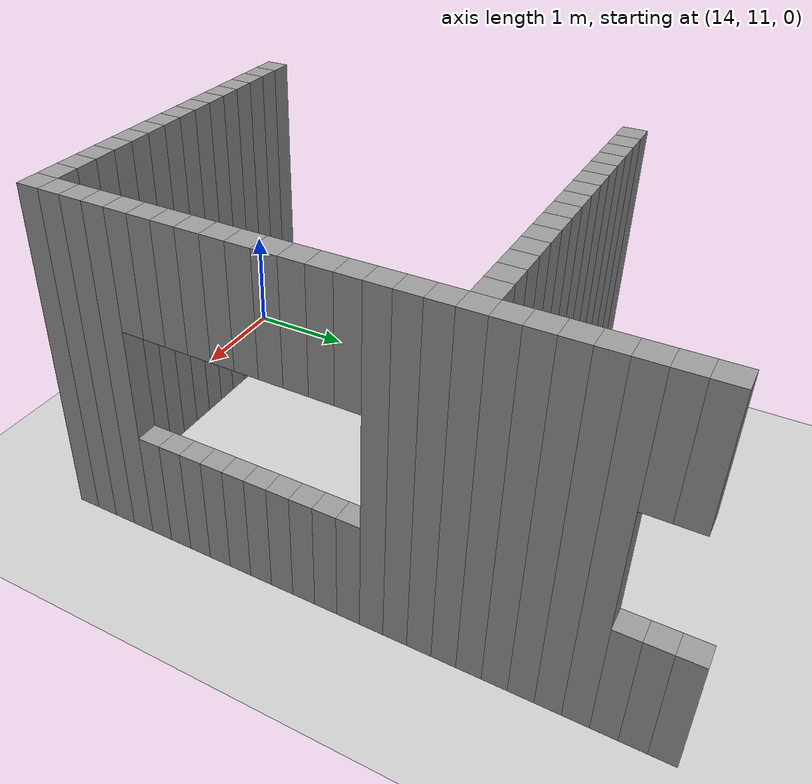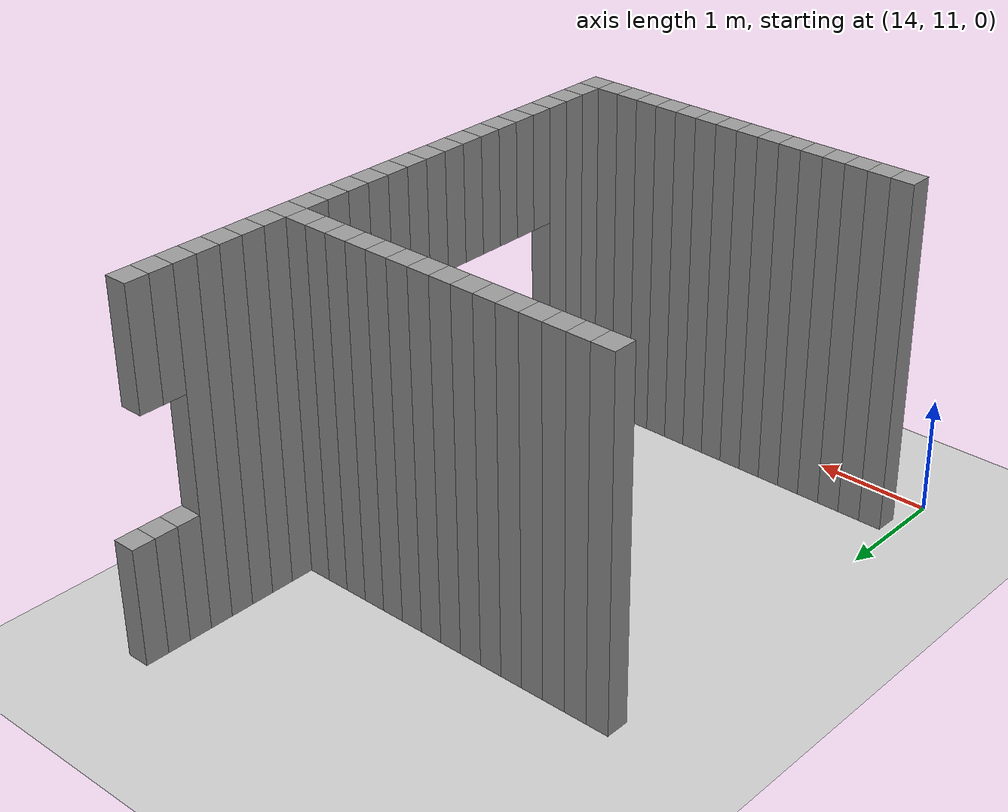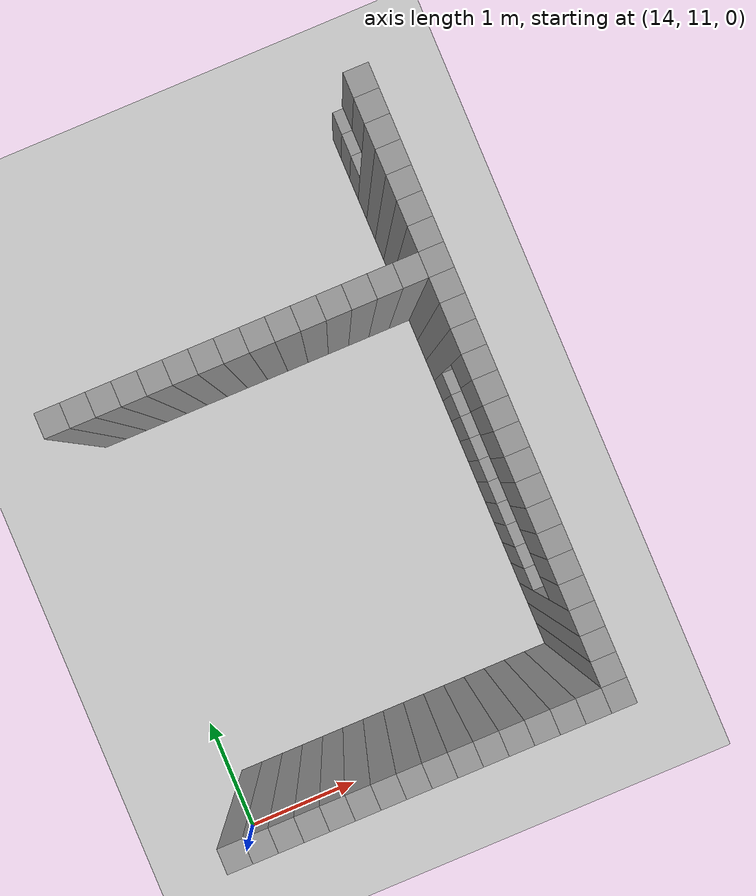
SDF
<sdf version="1.7">
 <world name="default">
  <model name="ground_plane">
   <static>1</static>
   <link name="link">
    <collision name="collision">
     <geometry><plane><normal>0 0 1</normal><size>100 100</size></plane></geometry>
     <surface>
      <contact><collide_bitmask>65535</collide_bitmask></contact>
      <friction><ode><mu>100</mu><mu2>50</mu2></ode></friction>
     </surface>
    </collision>
    <visual name="visual">
     <cast_shadows>0</cast_shadows>
     <geometry><plane><normal>0 0 1</normal><size>100 100</size></plane></geometry>
     <material>
      <script><uri>file://media/materials/scripts/gazebo.material</uri><name>Gazebo/Grey</name></script>
     </material>
    </visual>
   </link>
  </model>
  <model name="05222">
   <pose>-1 -1 0 0 -0 0</pose>
   <link name="Wall_564">
    <collision name="Wall_564_Collision">
     <geometry><box><size>0.2 0.2 3</size></box></geometry>
     <pose>0 0 1.5 0 -0 0</pose>
    </collision>
    <visual name="Wall_564_Visual">
     <pose>0 0 1.5 0 -0 0</pose>
     <geometry><box><size>0.2 0.2 3</size></box></geometry>
     <material>
      <script><uri>file://media/materials/scripts/gazebo.material</uri><name>Gazebo/Grey</name></script>
      <ambient>1 1 1 1</ambient>
     </material>
     <meta><layer>0</layer></meta>
    </visual>
    <pose>15.200000000000001 12.4 0 0 -0 0</pose>
   </link>
   <link name="Wall_565">
    <collision name="Wall_565_Collision">
     <geometry><box><size>0.2 0.2 3</size></box></geometry>
     <pose>0 0 1.5 0 -0 0</pose>
    </collision>
    <visual name="Wall_565_Visual">
     <pose>0 0 1.5 0 -0 0</pose>
     <geometry><box><size>0.2 0.2 3</size></box></geometry>
     <material>
      <script><uri>file://media/materials/scripts/gazebo.material</uri><name>Gazebo/Grey</name></script>
      <ambient>1 1 1 1</ambient>
     </material>
     <meta><layer>0</layer></meta>
    </visual>
    <pose>15.4 12.4 0 0 -0 0</pose>
   </link>
   <link name="Wall_566">
    <collision name="Wall_566_Collision">
     <geometry><box><size>0.2 0.2 3</size></box></geometry>
     <pose>0 0 1.5 0 -0 0</pose>
    </collision>
    <visual name="Wall_566_Visual">
     <pose>0 0 1.5 0 -0 0</pose>
     <geometry><box><size>0.2 0.2 3</size></box></geometry>
     <material>
      <script><uri>file://media/materials/scripts/gazebo.material</uri><name>Gazebo/Grey</name></script>
      <ambient>1 1 1 1</ambient>
     </material>
     <meta><layer>0</layer></meta>
    </visual>
    <pose>15.600000000000001 12.4 0 0 -0 0</pose>
   </link>
   <link name="Wall_567">
    <collision name="Wall_567_Collision">
     <geometry><box><size>0.2 0.2 3</size></box></geometry>
     <pose>0 0 1.5 0 -0 0</pose>
    </collision>
    <visual name="Wall_567_Visual">
     <pose>0 0 1.5 0 -0 0</pose>
     <geometry><box><size>0.2 0.2 3</size></box></geometry>
     <material>
      <script><uri>file://media/materials/scripts/gazebo.material</uri><name>Gazebo/Grey</name></script>
      <ambient>1 1 1 1</ambient>
     </material>
     <meta><layer>0</layer></meta>
    </visual>
    <pose>15.8 12.4 0 0 -0 0</pose>
   </link>
   <link name="Wall_568">
    <collision name="Wall_568_Collision">
     <geometry><box><size>0.2 0.2 3</size></box></geometry>
     <pose>0 0 1.5 0 -0 0</pose>
    </collision>
    <visual name="Wall_568_Visual">
     <pose>0 0 1.5 0 -0 0</pose>
     <geometry><box><size>0.2 0.2 3</size></box></geometry>
     <material>
      <script><uri>file://media/materials/scripts/gazebo.material</uri><name>Gazebo/Grey</name></script>
      <ambient>1 1 1 1</ambient>
     </material>
     <meta><layer>0</layer></meta>
    </visual>
    <pose>16.0 12.4 0 0 -0 0</pose>
   </link>
   <link name="Wall_569">
    <collision name="Wall_569_Collision">
     <geometry><box><size>0.2 0.2 3</size></box></geometry>
     <pose>0 0 1.5 0 -0 0</pose>
    </collision>
    <visual name="Wall_569_Visual">
     <pose>0 0 1.5 0 -0 0</pose>
     <geometry><box><size>0.2 0.2 3</size></box></geometry>
     <material>
      <script><uri>file://media/materials/scripts/gazebo.material</uri><name>Gazebo/Grey</name></script>
      <ambient>1 1 1 1</ambient>
     </material>
     <meta><layer>0</layer></meta>
    </visual>
    <pose>16.2 12.4 0 0 -0 0</pose>
   </link>
   <link name="Wall_570">
    <collision name="Wall_570_Collision">
     <geometry><box><size>0.2 0.2 3</size></box></geometry>
     <pose>0 0 1.5 0 -0 0</pose>
    </collision>
    <visual name="Wall_570_Visual">
     <pose>0 0 1.5 0 -0 0</pose>
     <geometry><box><size>0.2 0.2 3</size></box></geometry>
     <material>
      <script><uri>file://media/materials/scripts/gazebo.material</uri><name>Gazebo/Grey</name></script>
      <ambient>1 1 1 1</ambient>
     </material>
     <meta><layer>0</layer></meta>
    </visual>
    <pose>16.400000000000002 12.4 0 0 -0 0</pose>
   </link>
   <link name="Wall_571">
    <collision name="Wall_571_Collision">
     <geometry><box><size>0.2 0.2 3</size></box></geometry>
     <pose>0 0 1.5 0 -0 0</pose>
    </collision>
    <visual name="Wall_571_Visual">
     <pose>0 0 1.5 0 -0 0</pose>
     <geometry><box><size>0.2 0.2 3</size></box></geometry>
     <material>
      <script><uri>file://media/materials/scripts/gazebo.material</uri><name>Gazebo/Grey</name></script>
      <ambient>1 1 1 1</ambient>
     </material>
     <meta><layer>0</layer></meta>
    </visual>
    <pose>16.6 12.4 0 0 -0 0</pose>
   </link>
   <link name="Wall_572">
    <collision name="Wall_572_Collision">
     <geometry><box><size>0.2 0.2 3</size></box></geometry>
     <pose>0 0 1.5 0 -0 0</pose>
    </collision>
    <visual name="Wall_572_Visual">
     <pose>0 0 1.5 0 -0 0</pose>
     <geometry><box><size>0.2 0.2 3</size></box></geometry>
     <material>
      <script><uri>file://media/materials/scripts/gazebo.material</uri><name>Gazebo/Grey</name></script>
      <ambient>1 1 1 1</ambient>
     </material>
     <meta><layer>0</layer></meta>
    </visual>
    <pose>16.8 12.4 0 0 -0 0</pose>
   </link>
   <link name="Wall_573">
    <collision name="Wall_573_Collision">
     <geometry><box><size>0.2 0.2 3</size></box></geometry>
     <pose>0 0 1.5 0 -0 0</pose>
    </collision>
    <visual name="Wall_573_Visual">
     <pose>0 0 1.5 0 -0 0</pose>
     <geometry><box><size>0.2 0.2 3</size></box></geometry>
     <material>
      <script><uri>file://media/materials/scripts/gazebo.material</uri><name>Gazebo/Grey</name></script>
      <ambient>1 1 1 1</ambient>
     </material>
     <meta><layer>0</layer></meta>
    </visual>
    <pose>17.0 12.4 0 0 -0 0</pose>
   </link>
   <link name="Wall_574">
    <collision name="Wall_574_Collision">
     <geometry><box><size>0.2 0.2 3</size></box></geometry>
     <pose>0 0 1.5 0 -0 0</pose>
    </collision>
    <visual name="Wall_574_Visual">
     <pose>0 0 1.5 0 -0 0</pose>
     <geometry><box><size>0.2 0.2 3</size></box></geometry>
     <material>
      <script><uri>file://media/materials/scripts/gazebo.material</uri><name>Gazebo/Grey</name></script>
      <ambient>1 1 1 1</ambient>
     </material>
     <meta><layer>0</layer></meta>
    </visual>
    <pose>17.2 12.4 0 0 -0 0</pose>
   </link>
   <link name="Wall_575">
    <collision name="Wall_575_Collision">
     <geometry><box><size>0.2 0.2 3</size></box></geometry>
     <pose>0 0 1.5 0 -0 0</pose>
    </collision>
    <visual name="Wall_575_Visual">
     <pose>0 0 1.5 0 -0 0</pose>
     <geometry><box><size>0.2 0.2 3</size></box></geometry>
     <material>
      <script><uri>file://media/materials/scripts/gazebo.material</uri><name>Gazebo/Grey</name></script>
      <ambient>1 1 1 1</ambient>
     </material>
     <meta><layer>0</layer></meta>
    </visual>
    <pose>17.400000000000002 12.4 0 0 -0 0</pose>
   </link>
   <link name="Wall_576">
    <collision name="Wall_576_Collision">
     <geometry><box><size>0.2 0.2 3</size></box></geometry>
     <pose>0 0 1.5 0 -0 0</pose>
    </collision>
    <visual name="Wall_576_Visual">
     <pose>0 0 1.5 0 -0 0</pose>
     <geometry><box><size>0.2 0.2 3</size></box></geometry>
     <material>
      <script><uri>file://media/materials/scripts/gazebo.material</uri><name>Gazebo/Grey</name></script>
      <ambient>1 1 1 1</ambient>
     </material>
     <meta><layer>0</layer></meta>
    </visual>
    <pose>17.6 12.4 0 0 -0 0</pose>
   </link>
   <link name="Wall_577">
    <collision name="Wall_577_Collision">
     <geometry><box><size>0.2 0.2 3</size></box></geometry>
     <pose>0 0 1.5 0 -0 0</pose>
    </collision>
    <visual name="Wall_577_Visual">
     <pose>0 0 1.5 0 -0 0</pose>
     <geometry><box><size>0.2 0.2 3</size></box></geometry>
     <material>
      <script><uri>file://media/materials/scripts/gazebo.material</uri><name>Gazebo/Grey</name></script>
      <ambient>1 1 1 1</ambient>
     </material>
     <meta><layer>0</layer></meta>
    </visual>
    <pose>17.8 12.4 0 0 -0 0</pose>
   </link>
   <link name="Wall_578">
    <collision name="Wall_578_Collision">
     <geometry><box><size>0.2 0.2 3</size></box></geometry>
     <pose>0 0 1.5 0 -0 0</pose>
    </collision>
    <visual name="Wall_578_Visual">
     <pose>0 0 1.5 0 -0 0</pose>
     <geometry><box><size>0.2 0.2 3</size></box></geometry>
     <material>
      <script><uri>file://media/materials/scripts/gazebo.material</uri><name>Gazebo/Grey</name></script>
      <ambient>1 1 1 1</ambient>
     </material>
     <meta><layer>0</layer></meta>
    </visual>
    <pose>18.0 12.4 0 0 -0 0</pose>
   </link>
   <link name="Wall_579">
    <collision name="Wall_579_Collision">
     <geometry><box><size>0.2 0.2 3</size></box></geometry>
     <pose>0 0 1.5 0 -0 0</pose>
    </collision>
    <visual name="Wall_579_Visual">
     <pose>0 0 1.5 0 -0 0</pose>
     <geometry><box><size>0.2 0.2 3</size></box></geometry>
     <material>
      <script><uri>file://media/materials/scripts/gazebo.material</uri><name>Gazebo/Grey</name></script>
      <ambient>1 1 1 1</ambient>
     </material>
     <meta><layer>0</layer></meta>
    </visual>
    <pose>18.2 12.4 0 0 -0 0</pose>
   </link>
   <link name="Wall_584">
    <collision name="Wall_584_Collision">
     <geometry><box><size>0.2 0.2 3</size></box></geometry>
     <pose>0 0 1.5 0 -0 0</pose>
    </collision>
    <visual name="Wall_584_Visual">
     <pose>0 0 1.5 0 -0 0</pose>
     <geometry><box><size>0.2 0.2 3</size></box></geometry>
     <material>
      <script><uri>file://media/materials/scripts/gazebo.material</uri><name>Gazebo/Grey</name></script>
      <ambient>1 1 1 1</ambient>
     </material>
     <meta><layer>0</layer></meta>
    </visual>
    <pose>18.2 12.600000000000001 0 0 -0 0</pose>
   </link>
   <link name="Wall_590">
    <collision name="Wall_590_Collision">
     <geometry><box><size>0.2 0.2 3</size></box></geometry>
     <pose>0 0 1.5 0 -0 0</pose>
    </collision>
    <visual name="Wall_590_Visual">
     <pose>0 0 1.5 0 -0 0</pose>
     <geometry><box><size>0.2 0.2 3</size></box></geometry>
     <material>
      <script><uri>file://media/materials/scripts/gazebo.material</uri><name>Gazebo/Grey</name></script>
      <ambient>1 1 1 1</ambient>
     </material>
     <meta><layer>0</layer></meta>
    </visual>
    <pose>18.2 12.8 0 0 -0 0</pose>
   </link>
   <link name="Wall_633">
    <collision name="Wall_633_Collision">
     <geometry><box><size>0.2 0.2 3</size></box></geometry>
     <pose>0 0 1.5 0 -0 0</pose>
    </collision>
    <visual name="Wall_633_Visual">
     <pose>0 0 1.5 0 -0 0</pose>
     <geometry><box><size>0.2 0.2 3</size></box></geometry>
     <material>
      <script><uri>file://media/materials/scripts/gazebo.material</uri><name>Gazebo/Grey</name></script>
      <ambient>1 1 1 1</ambient>
     </material>
     <meta><layer>0</layer></meta>
    </visual>
    <pose>18.2 13.0 0 0 -0 0</pose>
   </link>
   <link name="Wall_657">
    <collision name="Wall_657_Collision">
     <geometry><box><size>0.2 0.2 1.0</size></box></geometry>
     <pose>0 0 0.5 0 -0 0</pose>
    </collision>
    <visual name="Wall_657_Visual">
     <pose>0 0 0.5 0 -0 0</pose>
     <geometry><box><size>0.2 0.2 1.0</size></box></geometry>
     <material>
      <script><uri>file://media/materials/scripts/gazebo.material</uri><name>Gazebo/Grey</name></script>
      <ambient>1 1 1 1</ambient>
     </material>
     <meta><layer>0</layer></meta>
    </visual>
    <pose>18.2 13.200000000000001 0 0 -0 0</pose>
   </link>
   <link name="Wall_658">
    <collision name="Wall_658_Collision">
     <geometry><box><size>0.2 0.2 1.0</size></box></geometry>
     <pose>0 0 2.5 0 -0 0</pose>
    </collision>
    <visual name="Wall_658_Visual">
     <pose>0 0 2.5 0 -0 0</pose>
     <geometry><box><size>0.2 0.2 1.0</size></box></geometry>
     <material>
      <script><uri>file://media/materials/scripts/gazebo.material</uri><name>Gazebo/Grey</name></script>
      <ambient>1 1 1 1</ambient>
     </material>
     <meta><layer>0</layer></meta>
    </visual>
    <pose>18.2 13.200000000000001 0 0 -0 0</pose>
   </link>
   <link name="Window_657">
    <collision name="Window_657_Collision">
     <geometry><box><size>0.2 0.2 1.0</size></box></geometry>
     <pose>0 0 1.5 0 -0 0</pose>
    </collision>
    <visual name="Wall_658_Visual">
     <pose>0 0 2.5 0 -0 0</pose>
     <geometry><box><size>0.2 0.2 1.0</size></box></geometry>
     <material>
      <script><uri>file://media/materials/scripts/gazebo.material</uri><name>Gazebo/Grey</name></script>
      <ambient>1 1 1 1</ambient>
     </material>
     <meta><layer>0</layer></meta>
    </visual>
    <pose>18.2 13.200000000000001 0 0 -0 0</pose>
   </link>
   <link name="Wall_665">
    <collision name="Wall_665_Collision">
     <geometry><box><size>0.2 0.2 1.0</size></box></geometry>
     <pose>0 0 0.5 0 -0 0</pose>
    </collision>
    <visual name="Wall_665_Visual">
     <pose>0 0 0.5 0 -0 0</pose>
     <geometry><box><size>0.2 0.2 1.0</size></box></geometry>
     <material>
      <script><uri>file://media/materials/scripts/gazebo.material</uri><name>Gazebo/Grey</name></script>
      <ambient>1 1 1 1</ambient>
     </material>
     <meta><layer>0</layer></meta>
    </visual>
    <pose>18.2 13.4 0 0 -0 0</pose>
   </link>
   <link name="Wall_666">
    <collision name="Wall_666_Collision">
     <geometry><box><size>0.2 0.2 1.0</size></box></geometry>
     <pose>0 0 2.5 0 -0 0</pose>
    </collision>
    <visual name="Wall_666_Visual">
     <pose>0 0 2.5 0 -0 0</pose>
     <geometry><box><size>0.2 0.2 1.0</size></box></geometry>
     <material>
      <script><uri>file://media/materials/scripts/gazebo.material</uri><name>Gazebo/Grey</name></script>
      <ambient>1 1 1 1</ambient>
     </material>
     <meta><layer>0</layer></meta>
    </visual>
    <pose>18.2 13.4 0 0 -0 0</pose>
   </link>
   <link name="Window_665">
    <collision name="Window_665_Collision">
     <geometry><box><size>0.2 0.2 1.0</size></box></geometry>
     <pose>0 0 1.5 0 -0 0</pose>
    </collision>
    <visual name="Wall_666_Visual">
     <pose>0 0 2.5 0 -0 0</pose>
     <geometry><box><size>0.2 0.2 1.0</size></box></geometry>
     <material>
      <script><uri>file://media/materials/scripts/gazebo.material</uri><name>Gazebo/Grey</name></script>
      <ambient>1 1 1 1</ambient>
     </material>
     <meta><layer>0</layer></meta>
    </visual>
    <pose>18.2 13.4 0 0 -0 0</pose>
   </link>
   <link name="Wall_673">
    <collision name="Wall_673_Collision">
     <geometry><box><size>0.2 0.2 1.0</size></box></geometry>
     <pose>0 0 0.5 0 -0 0</pose>
    </collision>
    <visual name="Wall_673_Visual">
     <pose>0 0 0.5 0 -0 0</pose>
     <geometry><box><size>0.2 0.2 1.0</size></box></geometry>
     <material>
      <script><uri>file://media/materials/scripts/gazebo.material</uri><name>Gazebo/Grey</name></script>
      <ambient>1 1 1 1</ambient>
     </material>
     <meta><layer>0</layer></meta>
    </visual>
    <pose>18.2 13.600000000000001 0 0 -0 0</pose>
   </link>
   <link name="Wall_674">
    <collision name="Wall_674_Collision">
     <geometry><box><size>0.2 0.2 1.0</size></box></geometry>
     <pose>0 0 2.5 0 -0 0</pose>
    </collision>
    <visual name="Wall_674_Visual">
     <pose>0 0 2.5 0 -0 0</pose>
     <geometry><box><size>0.2 0.2 1.0</size></box></geometry>
     <material>
      <script><uri>file://media/materials/scripts/gazebo.material</uri><name>Gazebo/Grey</name></script>
      <ambient>1 1 1 1</ambient>
     </material>
     <meta><layer>0</layer></meta>
    </visual>
    <pose>18.2 13.600000000000001 0 0 -0 0</pose>
   </link>
   <link name="Window_673">
    <collision name="Window_673_Collision">
     <geometry><box><size>0.2 0.2 1.0</size></box></geometry>
     <pose>0 0 1.5 0 -0 0</pose>
    </collision>
    <visual name="Wall_674_Visual">
     <pose>0 0 2.5 0 -0 0</pose>
     <geometry><box><size>0.2 0.2 1.0</size></box></geometry>
     <material>
      <script><uri>file://media/materials/scripts/gazebo.material</uri><name>Gazebo/Grey</name></script>
      <ambient>1 1 1 1</ambient>
     </material>
     <meta><layer>0</layer></meta>
    </visual>
    <pose>18.2 13.600000000000001 0 0 -0 0</pose>
   </link>
   <link name="Wall_680">
    <collision name="Wall_680_Collision">
     <geometry><box><size>0.2 0.2 1.0</size></box></geometry>
     <pose>0 0 0.5 0 -0 0</pose>
    </collision>
    <visual name="Wall_680_Visual">
     <pose>0 0 0.5 0 -0 0</pose>
     <geometry><box><size>0.2 0.2 1.0</size></box></geometry>
     <material>
      <script><uri>file://media/materials/scripts/gazebo.material</uri><name>Gazebo/Grey</name></script>
      <ambient>1 1 1 1</ambient>
     </material>
     <meta><layer>0</layer></meta>
    </visual>
    <pose>18.2 13.8 0 0 -0 0</pose>
   </link>
   <link name="Wall_681">
    <collision name="Wall_681_Collision">
     <geometry><box><size>0.2 0.2 1.0</size></box></geometry>
     <pose>0 0 2.5 0 -0 0</pose>
    </collision>
    <visual name="Wall_681_Visual">
     <pose>0 0 2.5 0 -0 0</pose>
     <geometry><box><size>0.2 0.2 1.0</size></box></geometry>
     <material>
      <script><uri>file://media/materials/scripts/gazebo.material</uri><name>Gazebo/Grey</name></script>
      <ambient>1 1 1 1</ambient>
     </material>
     <meta><layer>0</layer></meta>
    </visual>
    <pose>18.2 13.8 0 0 -0 0</pose>
   </link>
   <link name="Window_680">
    <collision name="Window_680_Collision">
     <geometry><box><size>0.2 0.2 1.0</size></box></geometry>
     <pose>0 0 1.5 0 -0 0</pose>
    </collision>
    <visual name="Wall_681_Visual">
     <pose>0 0 2.5 0 -0 0</pose>
     <geometry><box><size>0.2 0.2 1.0</size></box></geometry>
     <material>
      <script><uri>file://media/materials/scripts/gazebo.material</uri><name>Gazebo/Grey</name></script>
      <ambient>1 1 1 1</ambient>
     </material>
     <meta><layer>0</layer></meta>
    </visual>
    <pose>18.2 13.8 0 0 -0 0</pose>
   </link>
   <link name="Wall_687">
    <collision name="Wall_687_Collision">
     <geometry><box><size>0.2 0.2 1.0</size></box></geometry>
     <pose>0 0 0.5 0 -0 0</pose>
    </collision>
    <visual name="Wall_687_Visual">
     <pose>0 0 0.5 0 -0 0</pose>
     <geometry><box><size>0.2 0.2 1.0</size></box></geometry>
     <material>
      <script><uri>file://media/materials/scripts/gazebo.material</uri><name>Gazebo/Grey</name></script>
      <ambient>1 1 1 1</ambient>
     </material>
     <meta><layer>0</layer></meta>
    </visual>
    <pose>18.2 14.0 0 0 -0 0</pose>
   </link>
   <link name="Wall_688">
    <collision name="Wall_688_Collision">
     <geometry><box><size>0.2 0.2 1.0</size></box></geometry>
     <pose>0 0 2.5 0 -0 0</pose>
    </collision>
    <visual name="Wall_688_Visual">
     <pose>0 0 2.5 0 -0 0</pose>
     <geometry><box><size>0.2 0.2 1.0</size></box></geometry>
     <material>
      <script><uri>file://media/materials/scripts/gazebo.material</uri><name>Gazebo/Grey</name></script>
      <ambient>1 1 1 1</ambient>
     </material>
     <meta><layer>0</layer></meta>
    </visual>
    <pose>18.2 14.0 0 0 -0 0</pose>
   </link>
   <link name="Window_687">
    <collision name="Window_687_Collision">
     <geometry><box><size>0.2 0.2 1.0</size></box></geometry>
     <pose>0 0 1.5 0 -0 0</pose>
    </collision>
    <visual name="Wall_688_Visual">
     <pose>0 0 2.5 0 -0 0</pose>
     <geometry><box><size>0.2 0.2 1.0</size></box></geometry>
     <material>
      <script><uri>file://media/materials/scripts/gazebo.material</uri><name>Gazebo/Grey</name></script>
      <ambient>1 1 1 1</ambient>
     </material>
     <meta><layer>0</layer></meta>
    </visual>
    <pose>18.2 14.0 0 0 -0 0</pose>
   </link>
   <link name="Wall_693">
    <collision name="Wall_693_Collision">
     <geometry><box><size>0.2 0.2 1.0</size></box></geometry>
     <pose>0 0 0.5 0 -0 0</pose>
    </collision>
    <visual name="Wall_693_Visual">
     <pose>0 0 0.5 0 -0 0</pose>
     <geometry><box><size>0.2 0.2 1.0</size></box></geometry>
     <material>
      <script><uri>file://media/materials/scripts/gazebo.material</uri><name>Gazebo/Grey</name></script>
      <ambient>1 1 1 1</ambient>
     </material>
     <meta><layer>0</layer></meta>
    </visual>
    <pose>18.2 14.200000000000001 0 0 -0 0</pose>
   </link>
   <link name="Wall_694">
    <collision name="Wall_694_Collision">
     <geometry><box><size>0.2 0.2 1.0</size></box></geometry>
     <pose>0 0 2.5 0 -0 0</pose>
    </collision>
    <visual name="Wall_694_Visual">
     <pose>0 0 2.5 0 -0 0</pose>
     <geometry><box><size>0.2 0.2 1.0</size></box></geometry>
     <material>
      <script><uri>file://media/materials/scripts/gazebo.material</uri><name>Gazebo/Grey</name></script>
      <ambient>1 1 1 1</ambient>
     </material>
     <meta><layer>0</layer></meta>
    </visual>
    <pose>18.2 14.200000000000001 0 0 -0 0</pose>
   </link>
   <link name="Window_693">
    <collision name="Window_693_Collision">
     <geometry><box><size>0.2 0.2 1.0</size></box></geometry>
     <pose>0 0 1.5 0 -0 0</pose>
    </collision>
    <visual name="Wall_694_Visual">
     <pose>0 0 2.5 0 -0 0</pose>
     <geometry><box><size>0.2 0.2 1.0</size></box></geometry>
     <material>
      <script><uri>file://media/materials/scripts/gazebo.material</uri><name>Gazebo/Grey</name></script>
      <ambient>1 1 1 1</ambient>
     </material>
     <meta><layer>0</layer></meta>
    </visual>
    <pose>18.2 14.200000000000001 0 0 -0 0</pose>
   </link>
   <link name="Wall_699">
    <collision name="Wall_699_Collision">
     <geometry><box><size>0.2 0.2 1.0</size></box></geometry>
     <pose>0 0 0.5 0 -0 0</pose>
    </collision>
    <visual name="Wall_699_Visual">
     <pose>0 0 0.5 0 -0 0</pose>
     <geometry><box><size>0.2 0.2 1.0</size></box></geometry>
     <material>
      <script><uri>file://media/materials/scripts/gazebo.material</uri><name>Gazebo/Grey</name></script>
      <ambient>1 1 1 1</ambient>
     </material>
     <meta><layer>0</layer></meta>
    </visual>
    <pose>18.2 14.4 0 0 -0 0</pose>
   </link>
   <link name="Wall_700">
    <collision name="Wall_700_Collision">
     <geometry><box><size>0.2 0.2 1.0</size></box></geometry>
     <pose>0 0 2.5 0 -0 0</pose>
    </collision>
    <visual name="Wall_700_Visual">
     <pose>0 0 2.5 0 -0 0</pose>
     <geometry><box><size>0.2 0.2 1.0</size></box></geometry>
     <material>
      <script><uri>file://media/materials/scripts/gazebo.material</uri><name>Gazebo/Grey</name></script>
      <ambient>1 1 1 1</ambient>
     </material>
     <meta><layer>0</layer></meta>
    </visual>
    <pose>18.2 14.4 0 0 -0 0</pose>
   </link>
   <link name="Window_699">
    <collision name="Window_699_Collision">
     <geometry><box><size>0.2 0.2 1.0</size></box></geometry>
     <pose>0 0 1.5 0 -0 0</pose>
    </collision>
    <visual name="Wall_700_Visual">
     <pose>0 0 2.5 0 -0 0</pose>
     <geometry><box><size>0.2 0.2 1.0</size></box></geometry>
     <material>
      <script><uri>file://media/materials/scripts/gazebo.material</uri><name>Gazebo/Grey</name></script>
      <ambient>1 1 1 1</ambient>
     </material>
     <meta><layer>0</layer></meta>
    </visual>
    <pose>18.2 14.4 0 0 -0 0</pose>
   </link>
   <link name="Wall_705">
    <collision name="Wall_705_Collision">
     <geometry><box><size>0.2 0.2 1.0</size></box></geometry>
     <pose>0 0 0.5 0 -0 0</pose>
    </collision>
    <visual name="Wall_705_Visual">
     <pose>0 0 0.5 0 -0 0</pose>
     <geometry><box><size>0.2 0.2 1.0</size></box></geometry>
     <material>
      <script><uri>file://media/materials/scripts/gazebo.material</uri><name>Gazebo/Grey</name></script>
      <ambient>1 1 1 1</ambient>
     </material>
     <meta><layer>0</layer></meta>
    </visual>
    <pose>18.2 14.600000000000001 0 0 -0 0</pose>
   </link>
   <link name="Wall_706">
    <collision name="Wall_706_Collision">
     <geometry><box><size>0.2 0.2 1.0</size></box></geometry>
     <pose>0 0 2.5 0 -0 0</pose>
    </collision>
    <visual name="Wall_706_Visual">
     <pose>0 0 2.5 0 -0 0</pose>
     <geometry><box><size>0.2 0.2 1.0</size></box></geometry>
     <material>
      <script><uri>file://media/materials/scripts/gazebo.material</uri><name>Gazebo/Grey</name></script>
      <ambient>1 1 1 1</ambient>
     </material>
     <meta><layer>0</layer></meta>
    </visual>
    <pose>18.2 14.600000000000001 0 0 -0 0</pose>
   </link>
   <link name="Window_705">
    <collision name="Window_705_Collision">
     <geometry><box><size>0.2 0.2 1.0</size></box></geometry>
     <pose>0 0 1.5 0 -0 0</pose>
    </collision>
    <visual name="Wall_706_Visual">
     <pose>0 0 2.5 0 -0 0</pose>
     <geometry><box><size>0.2 0.2 1.0</size></box></geometry>
     <material>
      <script><uri>file://media/materials/scripts/gazebo.material</uri><name>Gazebo/Grey</name></script>
      <ambient>1 1 1 1</ambient>
     </material>
     <meta><layer>0</layer></meta>
    </visual>
    <pose>18.2 14.600000000000001 0 0 -0 0</pose>
   </link>
   <link name="Wall_711">
    <collision name="Wall_711_Collision">
     <geometry><box><size>0.2 0.2 1.0</size></box></geometry>
     <pose>0 0 0.5 0 -0 0</pose>
    </collision>
    <visual name="Wall_711_Visual">
     <pose>0 0 0.5 0 -0 0</pose>
     <geometry><box><size>0.2 0.2 1.0</size></box></geometry>
     <material>
      <script><uri>file://media/materials/scripts/gazebo.material</uri><name>Gazebo/Grey</name></script>
      <ambient>1 1 1 1</ambient>
     </material>
     <meta><layer>0</layer></meta>
    </visual>
    <pose>18.2 14.8 0 0 -0 0</pose>
   </link>
   <link name="Wall_712">
    <collision name="Wall_712_Collision">
     <geometry><box><size>0.2 0.2 1.0</size></box></geometry>
     <pose>0 0 2.5 0 -0 0</pose>
    </collision>
    <visual name="Wall_712_Visual">
     <pose>0 0 2.5 0 -0 0</pose>
     <geometry><box><size>0.2 0.2 1.0</size></box></geometry>
     <material>
      <script><uri>file://media/materials/scripts/gazebo.material</uri><name>Gazebo/Grey</name></script>
      <ambient>1 1 1 1</ambient>
     </material>
     <meta><layer>0</layer></meta>
    </visual>
    <pose>18.2 14.8 0 0 -0 0</pose>
   </link>
   <link name="Window_711">
    <collision name="Window_711_Collision">
     <geometry><box><size>0.2 0.2 1.0</size></box></geometry>
     <pose>0 0 1.5 0 -0 0</pose>
    </collision>
    <visual name="Wall_712_Visual">
     <pose>0 0 2.5 0 -0 0</pose>
     <geometry><box><size>0.2 0.2 1.0</size></box></geometry>
     <material>
      <script><uri>file://media/materials/scripts/gazebo.material</uri><name>Gazebo/Grey</name></script>
      <ambient>1 1 1 1</ambient>
     </material>
     <meta><layer>0</layer></meta>
    </visual>
    <pose>18.2 14.8 0 0 -0 0</pose>
   </link>
   <link name="Wall_717">
    <collision name="Wall_717_Collision">
     <geometry><box><size>0.2 0.2 1.0</size></box></geometry>
     <pose>0 0 0.5 0 -0 0</pose>
    </collision>
    <visual name="Wall_717_Visual">
     <pose>0 0 0.5 0 -0 0</pose>
     <geometry><box><size>0.2 0.2 1.0</size></box></geometry>
     <material>
      <script><uri>file://media/materials/scripts/gazebo.material</uri><name>Gazebo/Grey</name></script>
      <ambient>1 1 1 1</ambient>
     </material>
     <meta><layer>0</layer></meta>
    </visual>
    <pose>18.2 15.0 0 0 -0 0</pose>
   </link>
   <link name="Wall_718">
    <collision name="Wall_718_Collision">
     <geometry><box><size>0.2 0.2 1.0</size></box></geometry>
     <pose>0 0 2.5 0 -0 0</pose>
    </collision>
    <visual name="Wall_718_Visual">
     <pose>0 0 2.5 0 -0 0</pose>
     <geometry><box><size>0.2 0.2 1.0</size></box></geometry>
     <material>
      <script><uri>file://media/materials/scripts/gazebo.material</uri><name>Gazebo/Grey</name></script>
      <ambient>1 1 1 1</ambient>
     </material>
     <meta><layer>0</layer></meta>
    </visual>
    <pose>18.2 15.0 0 0 -0 0</pose>
   </link>
   <link name="Window_717">
    <collision name="Window_717_Collision">
     <geometry><box><size>0.2 0.2 1.0</size></box></geometry>
     <pose>0 0 1.5 0 -0 0</pose>
    </collision>
    <visual name="Wall_718_Visual">
     <pose>0 0 2.5 0 -0 0</pose>
     <geometry><box><size>0.2 0.2 1.0</size></box></geometry>
     <material>
      <script><uri>file://media/materials/scripts/gazebo.material</uri><name>Gazebo/Grey</name></script>
      <ambient>1 1 1 1</ambient>
     </material>
     <meta><layer>0</layer></meta>
    </visual>
    <pose>18.2 15.0 0 0 -0 0</pose>
   </link>
   <link name="Wall_723">
    <collision name="Wall_723_Collision">
     <geometry><box><size>0.2 0.2 3</size></box></geometry>
     <pose>0 0 1.5 0 -0 0</pose>
    </collision>
    <visual name="Wall_723_Visual">
     <pose>0 0 1.5 0 -0 0</pose>
     <geometry><box><size>0.2 0.2 3</size></box></geometry>
     <material>
      <script><uri>file://media/materials/scripts/gazebo.material</uri><name>Gazebo/Grey</name></script>
      <ambient>1 1 1 1</ambient>
     </material>
     <meta><layer>0</layer></meta>
    </visual>
    <pose>18.2 15.200000000000001 0 0 -0 0</pose>
   </link>
   <link name="Wall_728">
    <collision name="Wall_728_Collision">
     <geometry><box><size>0.2 0.2 3</size></box></geometry>
     <pose>0 0 1.5 0 -0 0</pose>
    </collision>
    <visual name="Wall_728_Visual">
     <pose>0 0 1.5 0 -0 0</pose>
     <geometry><box><size>0.2 0.2 3</size></box></geometry>
     <material>
      <script><uri>file://media/materials/scripts/gazebo.material</uri><name>Gazebo/Grey</name></script>
      <ambient>1 1 1 1</ambient>
     </material>
     <meta><layer>0</layer></meta>
    </visual>
    <pose>18.2 15.4 0 0 -0 0</pose>
   </link>
   <link name="Wall_733">
    <collision name="Wall_733_Collision">
     <geometry><box><size>0.2 0.2 3</size></box></geometry>
     <pose>0 0 1.5 0 -0 0</pose>
    </collision>
    <visual name="Wall_733_Visual">
     <pose>0 0 1.5 0 -0 0</pose>
     <geometry><box><size>0.2 0.2 3</size></box></geometry>
     <material>
      <script><uri>file://media/materials/scripts/gazebo.material</uri><name>Gazebo/Grey</name></script>
      <ambient>1 1 1 1</ambient>
     </material>
     <meta><layer>0</layer></meta>
    </visual>
    <pose>18.2 15.600000000000001 0 0 -0 0</pose>
   </link>
   <link name="Wall_742">
    <collision name="Wall_742_Collision">
     <geometry><box><size>0.2 0.2 3</size></box></geometry>
     <pose>0 0 1.5 0 -0 0</pose>
    </collision>
    <visual name="Wall_742_Visual">
     <pose>0 0 1.5 0 -0 0</pose>
     <geometry><box><size>0.2 0.2 3</size></box></geometry>
     <material>
      <script><uri>file://media/materials/scripts/gazebo.material</uri><name>Gazebo/Grey</name></script>
      <ambient>1 1 1 1</ambient>
     </material>
     <meta><layer>0</layer></meta>
    </visual>
    <pose>15.200000000000001 15.8 0 0 -0 0</pose>
   </link>
   <link name="Wall_743">
    <collision name="Wall_743_Collision">
     <geometry><box><size>0.2 0.2 3</size></box></geometry>
     <pose>0 0 1.5 0 -0 0</pose>
    </collision>
    <visual name="Wall_743_Visual">
     <pose>0 0 1.5 0 -0 0</pose>
     <geometry><box><size>0.2 0.2 3</size></box></geometry>
     <material>
      <script><uri>file://media/materials/scripts/gazebo.material</uri><name>Gazebo/Grey</name></script>
      <ambient>1 1 1 1</ambient>
     </material>
     <meta><layer>0</layer></meta>
    </visual>
    <pose>15.4 15.8 0 0 -0 0</pose>
   </link>
   <link name="Wall_744">
    <collision name="Wall_744_Collision">
     <geometry><box><size>0.2 0.2 3</size></box></geometry>
     <pose>0 0 1.5 0 -0 0</pose>
    </collision>
    <visual name="Wall_744_Visual">
     <pose>0 0 1.5 0 -0 0</pose>
     <geometry><box><size>0.2 0.2 3</size></box></geometry>
     <material>
      <script><uri>file://media/materials/scripts/gazebo.material</uri><name>Gazebo/Grey</name></script>
      <ambient>1 1 1 1</ambient>
     </material>
     <meta><layer>0</layer></meta>
    </visual>
    <pose>15.600000000000001 15.8 0 0 -0 0</pose>
   </link>
   <link name="Wall_745">
    <collision name="Wall_745_Collision">
     <geometry><box><size>0.2 0.2 3</size></box></geometry>
     <pose>0 0 1.5 0 -0 0</pose>
    </collision>
    <visual name="Wall_745_Visual">
     <pose>0 0 1.5 0 -0 0</pose>
     <geometry><box><size>0.2 0.2 3</size></box></geometry>
     <material>
      <script><uri>file://media/materials/scripts/gazebo.material</uri><name>Gazebo/Grey</name></script>
      <ambient>1 1 1 1</ambient>
     </material>
     <meta><layer>0</layer></meta>
    </visual>
    <pose>15.8 15.8 0 0 -0 0</pose>
   </link>
   <link name="Wall_746">
    <collision name="Wall_746_Collision">
     <geometry><box><size>0.2 0.2 3</size></box></geometry>
     <pose>0 0 1.5 0 -0 0</pose>
    </collision>
    <visual name="Wall_746_Visual">
     <pose>0 0 1.5 0 -0 0</pose>
     <geometry><box><size>0.2 0.2 3</size></box></geometry>
     <material>
      <script><uri>file://media/materials/scripts/gazebo.material</uri><name>Gazebo/Grey</name></script>
      <ambient>1 1 1 1</ambient>
     </material>
     <meta><layer>0</layer></meta>
    </visual>
    <pose>16.0 15.8 0 0 -0 0</pose>
   </link>
   <link name="Wall_747">
    <collision name="Wall_747_Collision">
     <geometry><box><size>0.2 0.2 3</size></box></geometry>
     <pose>0 0 1.5 0 -0 0</pose>
    </collision>
    <visual name="Wall_747_Visual">
     <pose>0 0 1.5 0 -0 0</pose>
     <geometry><box><size>0.2 0.2 3</size></box></geometry>
     <material>
      <script><uri>file://media/materials/scripts/gazebo.material</uri><name>Gazebo/Grey</name></script>
      <ambient>1 1 1 1</ambient>
     </material>
     <meta><layer>0</layer></meta>
    </visual>
    <pose>16.2 15.8 0 0 -0 0</pose>
   </link>
   <link name="Wall_748">
    <collision name="Wall_748_Collision">
     <geometry><box><size>0.2 0.2 3</size></box></geometry>
     <pose>0 0 1.5 0 -0 0</pose>
    </collision>
    <visual name="Wall_748_Visual">
     <pose>0 0 1.5 0 -0 0</pose>
     <geometry><box><size>0.2 0.2 3</size></box></geometry>
     <material>
      <script><uri>file://media/materials/scripts/gazebo.material</uri><name>Gazebo/Grey</name></script>
      <ambient>1 1 1 1</ambient>
     </material>
     <meta><layer>0</layer></meta>
    </visual>
    <pose>16.400000000000002 15.8 0 0 -0 0</pose>
   </link>
   <link name="Wall_749">
    <collision name="Wall_749_Collision">
     <geometry><box><size>0.2 0.2 3</size></box></geometry>
     <pose>0 0 1.5 0 -0 0</pose>
    </collision>
    <visual name="Wall_749_Visual">
     <pose>0 0 1.5 0 -0 0</pose>
     <geometry><box><size>0.2 0.2 3</size></box></geometry>
     <material>
      <script><uri>file://media/materials/scripts/gazebo.material</uri><name>Gazebo/Grey</name></script>
      <ambient>1 1 1 1</ambient>
     </material>
     <meta><layer>0</layer></meta>
    </visual>
    <pose>16.6 15.8 0 0 -0 0</pose>
   </link>
   <link name="Wall_750">
    <collision name="Wall_750_Collision">
     <geometry><box><size>0.2 0.2 3</size></box></geometry>
     <pose>0 0 1.5 0 -0 0</pose>
    </collision>
    <visual name="Wall_750_Visual">
     <pose>0 0 1.5 0 -0 0</pose>
     <geometry><box><size>0.2 0.2 3</size></box></geometry>
     <material>
      <script><uri>file://media/materials/scripts/gazebo.material</uri><name>Gazebo/Grey</name></script>
      <ambient>1 1 1 1</ambient>
     </material>
     <meta><layer>0</layer></meta>
    </visual>
    <pose>16.8 15.8 0 0 -0 0</pose>
   </link>
   <link name="Wall_751">
    <collision name="Wall_751_Collision">
     <geometry><box><size>0.2 0.2 3</size></box></geometry>
     <pose>0 0 1.5 0 -0 0</pose>
    </collision>
    <visual name="Wall_751_Visual">
     <pose>0 0 1.5 0 -0 0</pose>
     <geometry><box><size>0.2 0.2 3</size></box></geometry>
     <material>
      <script><uri>file://media/materials/scripts/gazebo.material</uri><name>Gazebo/Grey</name></script>
      <ambient>1 1 1 1</ambient>
     </material>
     <meta><layer>0</layer></meta>
    </visual>
    <pose>17.0 15.8 0 0 -0 0</pose>
   </link>
   <link name="Wall_752">
    <collision name="Wall_752_Collision">
     <geometry><box><size>0.2 0.2 3</size></box></geometry>
     <pose>0 0 1.5 0 -0 0</pose>
    </collision>
    <visual name="Wall_752_Visual">
     <pose>0 0 1.5 0 -0 0</pose>
     <geometry><box><size>0.2 0.2 3</size></box></geometry>
     <material>
      <script><uri>file://media/materials/scripts/gazebo.material</uri><name>Gazebo/Grey</name></script>
      <ambient>1 1 1 1</ambient>
     </material>
     <meta><layer>0</layer></meta>
    </visual>
    <pose>17.2 15.8 0 0 -0 0</pose>
   </link>
   <link name="Wall_753">
    <collision name="Wall_753_Collision">
     <geometry><box><size>0.2 0.2 3</size></box></geometry>
     <pose>0 0 1.5 0 -0 0</pose>
    </collision>
    <visual name="Wall_753_Visual">
     <pose>0 0 1.5 0 -0 0</pose>
     <geometry><box><size>0.2 0.2 3</size></box></geometry>
     <material>
      <script><uri>file://media/materials/scripts/gazebo.material</uri><name>Gazebo/Grey</name></script>
      <ambient>1 1 1 1</ambient>
     </material>
     <meta><layer>0</layer></meta>
    </visual>
    <pose>17.400000000000002 15.8 0 0 -0 0</pose>
   </link>
   <link name="Wall_754">
    <collision name="Wall_754_Collision">
     <geometry><box><size>0.2 0.2 3</size></box></geometry>
     <pose>0 0 1.5 0 -0 0</pose>
    </collision>
    <visual name="Wall_754_Visual">
     <pose>0 0 1.5 0 -0 0</pose>
     <geometry><box><size>0.2 0.2 3</size></box></geometry>
     <material>
      <script><uri>file://media/materials/scripts/gazebo.material</uri><name>Gazebo/Grey</name></script>
      <ambient>1 1 1 1</ambient>
     </material>
     <meta><layer>0</layer></meta>
    </visual>
    <pose>17.6 15.8 0 0 -0 0</pose>
   </link>
   <link name="Wall_755">
    <collision name="Wall_755_Collision">
     <geometry><box><size>0.2 0.2 3</size></box></geometry>
     <pose>0 0 1.5 0 -0 0</pose>
    </collision>
    <visual name="Wall_755_Visual">
     <pose>0 0 1.5 0 -0 0</pose>
     <geometry><box><size>0.2 0.2 3</size></box></geometry>
     <material>
      <script><uri>file://media/materials/scripts/gazebo.material</uri><name>Gazebo/Grey</name></script>
      <ambient>1 1 1 1</ambient>
     </material>
     <meta><layer>0</layer></meta>
    </visual>
    <pose>17.8 15.8 0 0 -0 0</pose>
   </link>
   <link name="Wall_756">
    <collision name="Wall_756_Collision">
     <geometry><box><size>0.2 0.2 3</size></box></geometry>
     <pose>0 0 1.5 0 -0 0</pose>
    </collision>
    <visual name="Wall_756_Visual">
     <pose>0 0 1.5 0 -0 0</pose>
     <geometry><box><size>0.2 0.2 3</size></box></geometry>
     <material>
      <script><uri>file://media/materials/scripts/gazebo.material</uri><name>Gazebo/Grey</name></script>
      <ambient>1 1 1 1</ambient>
     </material>
     <meta><layer>0</layer></meta>
    </visual>
    <pose>18.0 15.8 0 0 -0 0</pose>
   </link>
   <link name="Wall_757">
    <collision name="Wall_757_Collision">
     <geometry><box><size>0.2 0.2 3</size></box></geometry>
     <pose>0 0 1.5 0 -0 0</pose>
    </collision>
    <visual name="Wall_757_Visual">
     <pose>0 0 1.5 0 -0 0</pose>
     <geometry><box><size>0.2 0.2 3</size></box></geometry>
     <material>
      <script><uri>file://media/materials/scripts/gazebo.material</uri><name>Gazebo/Grey</name></script>
      <ambient>1 1 1 1</ambient>
     </material>
     <meta><layer>0</layer></meta>
    </visual>
    <pose>18.2 15.8 0 0 -0 0</pose>
   </link>
   <link name="Wall_764">
    <collision name="Wall_764_Collision">
     <geometry><box><size>0.2 0.2 3</size></box></geometry>
     <pose>0 0 1.5 0 -0 0</pose>
    </collision>
    <visual name="Wall_764_Visual">
     <pose>0 0 1.5 0 -0 0</pose>
     <geometry><box><size>0.2 0.2 3</size></box></geometry>
     <material>
      <script><uri>file://media/materials/scripts/gazebo.material</uri><name>Gazebo/Grey</name></script>
      <ambient>1 1 1 1</ambient>
     </material>
     <meta><layer>0</layer></meta>
    </visual>
    <pose>18.2 16.0 0 0 -0 0</pose>
   </link>
   <link name="Wall_771">
    <collision name="Wall_771_Collision">
     <geometry><box><size>0.2 0.2 3</size></box></geometry>
     <pose>0 0 1.5 0 -0 0</pose>
    </collision>
    <visual name="Wall_771_Visual">
     <pose>0 0 1.5 0 -0 0</pose>
     <geometry><box><size>0.2 0.2 3</size></box></geometry>
     <material>
      <script><uri>file://media/materials/scripts/gazebo.material</uri><name>Gazebo/Grey</name></script>
      <ambient>1 1 1 1</ambient>
     </material>
     <meta><layer>0</layer></meta>
    </visual>
    <pose>18.2 16.2 0 0 -0 0</pose>
   </link>
   <link name="Wall_777">
    <collision name="Wall_777_Collision">
     <geometry><box><size>0.2 0.2 3</size></box></geometry>
     <pose>0 0 1.5 0 -0 0</pose>
    </collision>
    <visual name="Wall_777_Visual">
     <pose>0 0 1.5 0 -0 0</pose>
     <geometry><box><size>0.2 0.2 3</size></box></geometry>
     <material>
      <script><uri>file://media/materials/scripts/gazebo.material</uri><name>Gazebo/Grey</name></script>
      <ambient>1 1 1 1</ambient>
     </material>
     <meta><layer>0</layer></meta>
    </visual>
    <pose>18.2 16.400000000000002 0 0 -0 0</pose>
   </link>
   <link name="Wall_784">
    <collision name="Wall_784_Collision">
     <geometry><box><size>0.2 0.2 3</size></box></geometry>
     <pose>0 0 1.5 0 -0 0</pose>
    </collision>
    <visual name="Wall_784_Visual">
     <pose>0 0 1.5 0 -0 0</pose>
     <geometry><box><size>0.2 0.2 3</size></box></geometry>
     <material>
      <script><uri>file://media/materials/scripts/gazebo.material</uri><name>Gazebo/Grey</name></script>
      <ambient>1 1 1 1</ambient>
     </material>
     <meta><layer>0</layer></meta>
    </visual>
    <pose>18.2 16.6 0 0 -0 0</pose>
   </link>
   <link name="Wall_791">
    <collision name="Wall_791_Collision">
     <geometry><box><size>0.2 0.2 3</size></box></geometry>
     <pose>0 0 1.5 0 -0 0</pose>
    </collision>
    <visual name="Wall_791_Visual">
     <pose>0 0 1.5 0 -0 0</pose>
     <geometry><box><size>0.2 0.2 3</size></box></geometry>
     <material>
      <script><uri>file://media/materials/scripts/gazebo.material</uri><name>Gazebo/Grey</name></script>
      <ambient>1 1 1 1</ambient>
     </material>
     <meta><layer>0</layer></meta>
    </visual>
    <pose>18.2 16.8 0 0 -0 0</pose>
   </link>
   <link name="Wall_798">
    <collision name="Wall_798_Collision">
     <geometry><box><size>0.2 0.2 1.0</size></box></geometry>
     <pose>0 0 0.5 0 -0 0</pose>
    </collision>
    <visual name="Wall_798_Visual">
     <pose>0 0 0.5 0 -0 0</pose>
     <geometry><box><size>0.2 0.2 1.0</size></box></geometry>
     <material>
      <script><uri>file://media/materials/scripts/gazebo.material</uri><name>Gazebo/Grey</name></script>
      <ambient>1 1 1 1</ambient>
     </material>
     <meta><layer>0</layer></meta>
    </visual>
    <pose>18.2 17.0 0 0 -0 0</pose>
   </link>
   <link name="Wall_799">
    <collision name="Wall_799_Collision">
     <geometry><box><size>0.2 0.2 1.0</size></box></geometry>
     <pose>0 0 2.5 0 -0 0</pose>
    </collision>
    <visual name="Wall_799_Visual">
     <pose>0 0 2.5 0 -0 0</pose>
     <geometry><box><size>0.2 0.2 1.0</size></box></geometry>
     <material>
      <script><uri>file://media/materials/scripts/gazebo.material</uri><name>Gazebo/Grey</name></script>
      <ambient>1 1 1 1</ambient>
     </material>
     <meta><layer>0</layer></meta>
    </visual>
    <pose>18.2 17.0 0 0 -0 0</pose>
   </link>
   <link name="Window_798">
    <collision name="Window_798_Collision">
     <geometry><box><size>0.2 0.2 1.0</size></box></geometry>
     <pose>0 0 1.5 0 -0 0</pose>
    </collision>
    <visual name="Wall_799_Visual">
     <pose>0 0 2.5 0 -0 0</pose>
     <geometry><box><size>0.2 0.2 1.0</size></box></geometry>
     <material>
      <script><uri>file://media/materials/scripts/gazebo.material</uri><name>Gazebo/Grey</name></script>
      <ambient>1 1 1 1</ambient>
     </material>
     <meta><layer>0</layer></meta>
    </visual>
    <pose>18.2 17.0 0 0 -0 0</pose>
   </link>
   <link name="Wall_805">
    <collision name="Wall_805_Collision">
     <geometry><box><size>0.2 0.2 1.0</size></box></geometry>
     <pose>0 0 0.5 0 -0 0</pose>
    </collision>
    <visual name="Wall_805_Visual">
     <pose>0 0 0.5 0 -0 0</pose>
     <geometry><box><size>0.2 0.2 1.0</size></box></geometry>
     <material>
      <script><uri>file://media/materials/scripts/gazebo.material</uri><name>Gazebo/Grey</name></script>
      <ambient>1 1 1 1</ambient>
     </material>
     <meta><layer>0</layer></meta>
    </visual>
    <pose>18.2 17.2 0 0 -0 0</pose>
   </link>
   <link name="Wall_806">
    <collision name="Wall_806_Collision">
     <geometry><box><size>0.2 0.2 1.0</size></box></geometry>
     <pose>0 0 2.5 0 -0 0</pose>
    </collision>
    <visual name="Wall_806_Visual">
     <pose>0 0 2.5 0 -0 0</pose>
     <geometry><box><size>0.2 0.2 1.0</size></box></geometry>
     <material>
      <script><uri>file://media/materials/scripts/gazebo.material</uri><name>Gazebo/Grey</name></script>
      <ambient>1 1 1 1</ambient>
     </material>
     <meta><layer>0</layer></meta>
    </visual>
    <pose>18.2 17.2 0 0 -0 0</pose>
   </link>
   <link name="Window_805">
    <collision name="Window_805_Collision">
     <geometry><box><size>0.2 0.2 1.0</size></box></geometry>
     <pose>0 0 1.5 0 -0 0</pose>
    </collision>
    <visual name="Wall_806_Visual">
     <pose>0 0 2.5 0 -0 0</pose>
     <geometry><box><size>0.2 0.2 1.0</size></box></geometry>
     <material>
      <script><uri>file://media/materials/scripts/gazebo.material</uri><name>Gazebo/Grey</name></script>
      <ambient>1 1 1 1</ambient>
     </material>
     <meta><layer>0</layer></meta>
    </visual>
    <pose>18.2 17.2 0 0 -0 0</pose>
   </link>
   <link name="Wall_812">
    <collision name="Wall_812_Collision">
     <geometry><box><size>0.2 0.2 1.0</size></box></geometry>
     <pose>0 0 0.5 0 -0 0</pose>
    </collision>
    <visual name="Wall_812_Visual">
     <pose>0 0 0.5 0 -0 0</pose>
     <geometry><box><size>0.2 0.2 1.0</size></box></geometry>
     <material>
      <script><uri>file://media/materials/scripts/gazebo.material</uri><name>Gazebo/Grey</name></script>
      <ambient>1 1 1 1</ambient>
     </material>
     <meta><layer>0</layer></meta>
    </visual>
    <pose>18.2 17.400000000000002 0 0 -0 0</pose>
   </link>
   <static>1</static>
  </model>
 </world>
</sdf>
